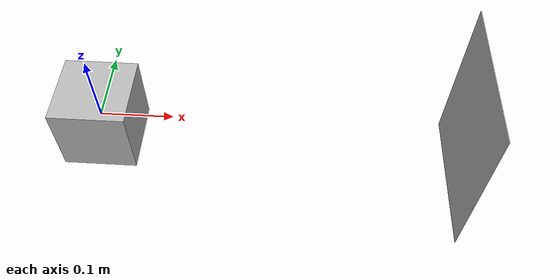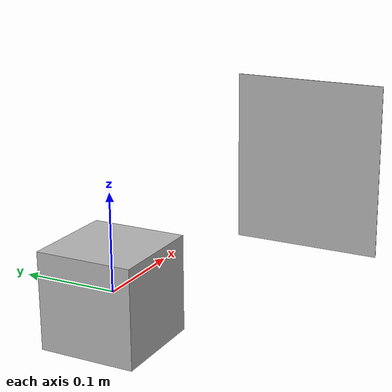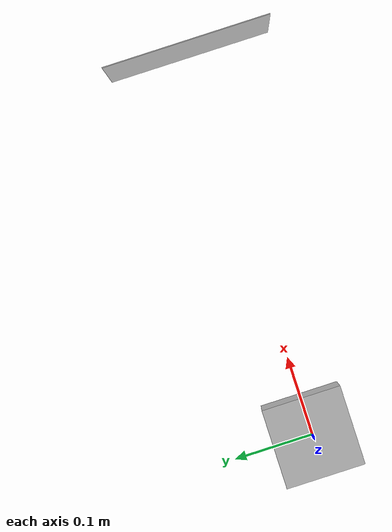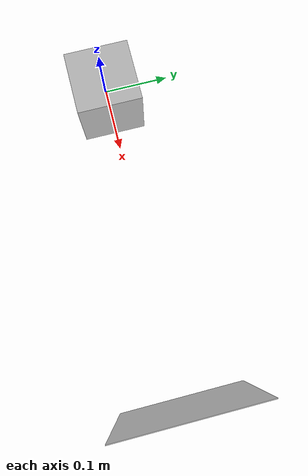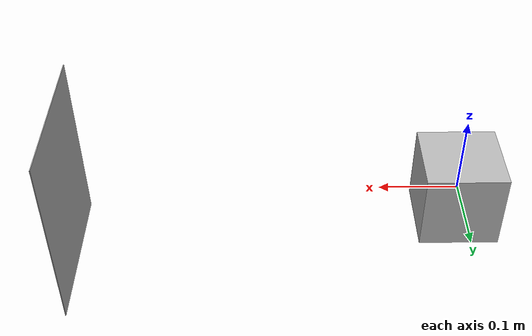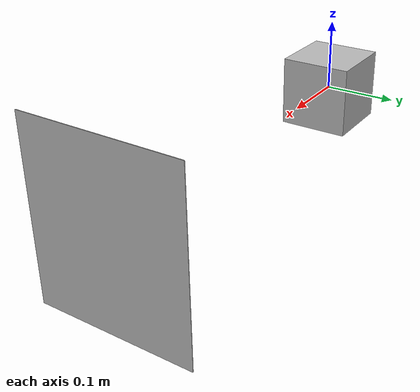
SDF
<?xml version="1.0" ?>
<!-- http://sdformat.org/spec?ver=1.6&elem=sensor#sensor_camera -->
<sdf version="1.6">
  <world name="default">
    <scene>
      <ambient>1.0 1.0 1.0 1</ambient>
      <background>0.5 0.5 0.5 1</background>
      <shadows>false</shadows>
    </scene>

    <!-- AR marker -->
    <include>
      <uri>model://marker_checkerboard_7x8_30mm</uri>
      <static>true</static>
      <pose>0.5 0 0 0 1.57079632679 0</pose>
    </include>

    <!-- Light -->

    <!-- Camera -->
    <model name='camera'>
      <static>true</static>
      <pose>0 0 0 0 0 0</pose>
      <link name='link'>
        <visual name='visual'>
          <geometry>
            <box>
              <size>0.1 0.1 0.1</size>
            </box>
          </geometry>
        </visual>
        <sensor name='my_camera' type='camera'>
          <camera>
            <!-- hfov_radian = atan(image_width / ( 2 * focal_length)) * 2 -->
            <horizontal_fov>0.976354271</horizontal_fov>
            <image>
              <width>640</width>
              <height>480</height>
              <format>R8G8B8</format>
            </image>
            <lens>
              <type>gnomonical</type>
              <intrinsics>
                <fx>602.5809936523438</fx>
                <fy>602.790771484375</fy>
                <cx>318.49566650390625</cx>
                <cy>251.39442443847656</cy>
                <s>1.0</s>
              </intrinsics>
            </lens>
            <distortion>
              <k1>0.14787238836288452</k1>
              <k2>-0.4849230647087097</k2>
              <k3>0.4212645888328552</k3>
              <p1>0.0020405694376677275</p1>
              <p2>6.937995203770697e-05</p2>
              <center>0.5 0.5</center>
            </distortion>
            <clip>
              <near>0.01</near>
              <far>100.0</far>
            </clip>
          </camera>
          <update_rate>10</update_rate>
          <plugin name="camera_controller" filename="libgazebo_ros_camera.so">
            <alwaysOn>true</alwaysOn>
            <updateRate>0.0</updateRate>
            <cameraName>sim/color</cameraName>
            <imageTopicName>image_raw</imageTopicName>
            <cameraInfoTopicName>camera_info</cameraInfoTopicName>
            <frameName>camera_link</frameName>
            <CxPrime>0.0</CxPrime>
            <Cx>318.49566650390625</Cx>
            <Cy>251.39442443847656</Cy>
            <!-- focal_length = image_width / (2*tan(hfov_radian /2)) -->
            <focal_length>0.0</focal_length>
            <!-- setting hackBaseline to anything but 0.0 will cause a misalignment
            between the gazebo sensor image and the frame it is supposed to
            be attached to -->
            <hackBaseline>0.0</hackBaseline>
            <distortionK1>0.14787238836288452</distortionK1>
            <distortionK2>-0.4849230647087097</distortionK2>
            <distortionK3>0.4212645888328552</distortionK3>
            <distortionT1>0.0020405694376677275</distortionT1>
            <distortionT2>6.937995203770697e-05</distortionT2>
            <autoDistortion>false</autoDistortion>
            <borderCrop>false</borderCrop>
          </plugin>
        </sensor>
      </link>
    </model>
  </world>
</sdf>

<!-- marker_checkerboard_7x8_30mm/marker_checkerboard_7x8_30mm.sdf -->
<sdf version="1.4">
  <model name="marker_checkerboard_7x8_30mm">
    <static>0</static>
    <link name="marker">
      <inertial>
        <mass>0.1</mass>
        <inertia>
          <ixx>0.000000</ixx>
          <ixy>0.000000</ixy>
          <ixz>0.000000</ixz>
          <iyy>0.000000</iyy>
          <iyz>0.000000</iyz>
          <izz>0.000000</izz>
        </inertia>
      </inertial>
      <visual name="visual">
        <geometry>
          <box>
            <size>0.24 0.21 0.001</size>
            <!-- SIZE OF THE MARKER -->
          </box>
        </geometry>
        <material>
          <script>
	    <uri>model://marker_checkerboard_7x8_30mm/material/scripts</uri>
	    <uri>model://marker_checkerboard_7x8_30mm/material/textures</uri>
            <name>checkerboard/marker_checkerboard_7x8_30mm</name>
          </script>
        </material>
      </visual>
      <collision name="collision">
        <geometry>
          <box>
            <size>0.24 0.21 0.02</size>
            <!-- SIZE OF THE MARKER -->
          </box>
        </geometry>
        <surface>
          <bounce />
          <friction>
            <ode />
          </friction>
          <contact>
            <ode />
          </contact>
        </surface>
      </collision>
      <self_collide>1</self_collide>
      <kinematic>0</kinematic>
      <gravity>1</gravity>
    </link>
  </model>
</sdf>
